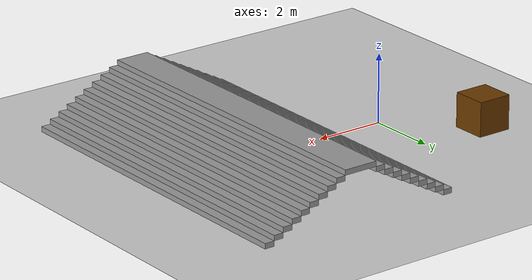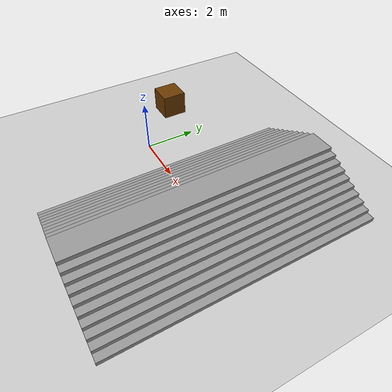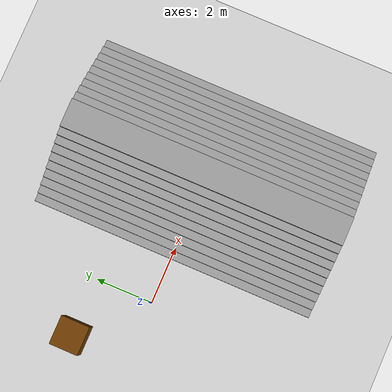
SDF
<?xml version="1.0" ?>
<sdf version="1.5">
    <world name="default">

        <physics type="ode">
        <max_step_size>0.0002</max_step_size>
        <real_time_factor>1</real_time_factor>
        <real_time_update_rate>5000</real_time_update_rate>
        <gravity>0 0 -9.81</gravity>
            <ode>
                <solver>
                <type>quick</type>
                <iters>50</iters>
                <sor>1.3</sor>
                </solver>
                <constraints>
                <cfm>0.0</cfm>
                <erp>0.2</erp>
                <contact_max_correcting_vel>10.0</contact_max_correcting_vel>
                <contact_surface_layer>0.001</contact_surface_layer>
                </constraints>
            </ode>
        </physics>

        <scene>
        <sky>
            <clouds>
                <speed>12</speed>
            </clouds>
        </sky>
        </scene>
        <include>
            <uri>model://sun</uri>
        </include>
        <include>
            <uri>model://ground_plane</uri>
        </include>
        <model name="static_environment">
        <static>true</static>
            <link name="static_box">
                <pose>-2 2 0.5 0 0 0</pose>
                <collision name="static_box_collision">
                    <geometry>
                        <box>
                            <size>1 1 1</size>
                        </box>
                    </geometry>
                </collision>
                <visual name="static_box_visual">
                    <geometry>
                        <box>
                            <size>1 1 1</size>
                        </box>
                    </geometry>
                    <material>
                        <ambient>0.2 0.2 0.2 1.0</ambient>
                        <diffuse>.421 0.225 0.0 1.0</diffuse>
                    </material>
                </visual>
            </link>

            <link name='Stairs'>
                <pose>3 0 0 0 0 0</pose>
                <scale>1 1 1</scale>
                <visual name='Stairs_Visual_0'>
                    <pose>-1.26 -0 0.075 0 -0 1.5708</pose>
                    <geometry>
                    <box>
                        <size>10 0.28 0.15</size>
                    </box>
                    </geometry>
                    <material>
                    <script>
                        <uri>file://media/materials/scripts/gazebo.material</uri>
                        <name>Gazebo/Grey</name>
                    </script>
                    <ambient>1 1 1 1</ambient>
                    </material>
                    <meta>
                    <layer>0</layer>
                    </meta>
                </visual>
                <collision name='Stairs_Collision_0'>
                    <geometry>
                    <box>
                        <size>10 0.28 0.15</size>
                    </box>
                    </geometry>
                    <pose>-1.26 -0 0.075 0 -0 1.5708</pose>
                </collision>
                <visual name='Stairs_Visual_1'>
                    <pose>-0.98 -0 0.225 0 -0 1.5708</pose>
                    <geometry>
                    <box>
                        <size>10 0.28 0.15</size>
                    </box>
                    </geometry>
                    <material>
                    <script>
                        <uri>file://media/materials/scripts/gazebo.material</uri>
                        <name>Gazebo/Grey</name>
                    </script>
                    <ambient>1 1 1 1</ambient>
                    </material>
                    <meta>
                    <layer>0</layer>
                    </meta>
                </visual>
                <collision name='Stairs_Collision_1'>
                    <geometry>
                    <box>
                        <size>10 0.28 0.15</size>
                    </box>
                    </geometry>
                    <pose>-0.98 -0 0.225 0 -0 1.5708</pose>
                </collision>
                <visual name='Stairs_Visual_2'>
                    <pose>-0.7 -0 0.375 0 -0 1.5708</pose>
                    <geometry>
                    <box>
                        <size>10 0.28 0.15</size>
                    </box>
                    </geometry>
                    <material>
                    <script>
                        <uri>file://media/materials/scripts/gazebo.material</uri>
                        <name>Gazebo/Grey</name>
                    </script>
                    <ambient>1 1 1 1</ambient>
                    </material>
                    <meta>
                    <layer>0</layer>
                    </meta>
                </visual>
                <collision name='Stairs_Collision_2'>
                    <geometry>
                    <box>
                        <size>10 0.28 0.15</size>
                    </box>
                    </geometry>
                    <pose>-0.7 -0 0.375 0 -0 1.5708</pose>
                </collision>
                <visual name='Stairs_Visual_3'>
                    <pose>-0.42 -0 0.525 0 -0 1.5708</pose>
                    <geometry>
                    <box>
                        <size>10 0.28 0.15</size>
                    </box>
                    </geometry>
                    <material>
                    <script>
                        <uri>file://media/materials/scripts/gazebo.material</uri>
                        <name>Gazebo/Grey</name>
                    </script>
                    <ambient>1 1 1 1</ambient>
                    </material>
                    <meta>
                    <layer>0</layer>
                    </meta>
                </visual>
                <collision name='Stairs_Collision_3'>
                    <geometry>
                    <box>
                        <size>10 0.28 0.15</size>
                    </box>
                    </geometry>
                    <pose>-0.42 -0 0.525 0 -0 1.5708</pose>
                </collision>
                <visual name='Stairs_Visual_4'>
                    <pose>-0.14 -0 0.675 0 -0 1.5708</pose>
                    <geometry>
                    <box>
                        <size>10 0.28 0.15</size>
                    </box>
                    </geometry>
                    <material>
                    <script>
                        <uri>file://media/materials/scripts/gazebo.material</uri>
                        <name>Gazebo/Grey</name>
                    </script>
                    <ambient>1 1 1 1</ambient>
                    </material>
                    <meta>
                    <layer>0</layer>
                    </meta>
                </visual>
                <collision name='Stairs_Collision_4'>
                    <geometry>
                    <box>
                        <size>10 0.28 0.15</size>
                    </box>
                    </geometry>
                    <pose>-0.14 -0 0.675 0 -0 1.5708</pose>
                </collision>
                <visual name='Stairs_Visual_5'>
                    <pose>0.14 0 0.825 0 -0 1.5708</pose>
                    <geometry>
                    <box>
                        <size>10 0.28 0.15</size>
                    </box>
                    </geometry>
                    <material>
                    <script>
                        <uri>file://media/materials/scripts/gazebo.material</uri>
                        <name>Gazebo/Grey</name>
                    </script>
                    <ambient>1 1 1 1</ambient>
                    </material>
                    <meta>
                    <layer>0</layer>
                    </meta>
                </visual>
                <collision name='Stairs_Collision_5'>
                    <geometry>
                    <box>
                        <size>10 0.28 0.15</size>
                    </box>
                    </geometry>
                    <pose>0.14 0 0.825 0 -0 1.5708</pose>
                </collision>
                <visual name='Stairs_Visual_6'>
                    <pose>0.42 0 0.975 0 -0 1.5708</pose>
                    <geometry>
                    <box>
                        <size>10 0.28 0.15</size>
                    </box>
                    </geometry>
                    <material>
                    <script>
                        <uri>file://media/materials/scripts/gazebo.material</uri>
                        <name>Gazebo/Grey</name>
                    </script>
                    <ambient>1 1 1 1</ambient>
                    </material>
                    <meta>
                    <layer>0</layer>
                    </meta>
                </visual>
                <collision name='Stairs_Collision_6'>
                    <geometry>
                    <box>
                        <size>10 0.28 0.15</size>
                    </box>
                    </geometry>
                    <pose>0.42 0 0.975 0 -0 1.5708</pose>
                </collision>
                <visual name='Stairs_Visual_7'>
                    <pose>0.7 0 1.125 0 -0 1.5708</pose>
                    <geometry>
                    <box>
                        <size>10 0.28 0.15</size>
                    </box>
                    </geometry>
                    <material>
                    <script>
                        <uri>file://media/materials/scripts/gazebo.material</uri>
                        <name>Gazebo/Grey</name>
                    </script>
                    <ambient>1 1 1 1</ambient>
                    </material>
                    <meta>
                    <layer>0</layer>
                    </meta>
                </visual>
                <collision name='Stairs_Collision_7'>
                    <geometry>
                    <box>
                        <size>10 0.28 0.15</size>
                    </box>
                    </geometry>
                    <pose>0.7 0 1.125 0 -0 1.5708</pose>
                </collision>
                <visual name='Stairs_Visual_8'>
                    <pose>0.98 0 1.275 0 -0 1.5708</pose>
                    <geometry>
                    <box>
                        <size>10 0.28 0.15</size>
                    </box>
                    </geometry>
                    <material>
                    <script>
                        <uri>file://media/materials/scripts/gazebo.material</uri>
                        <name>Gazebo/Grey</name>
                    </script>
                    <ambient>1 1 1 1</ambient>
                    </material>
                    <meta>
                    <layer>0</layer>
                    </meta>
                </visual>
                <collision name='Stairs_Collision_8'>
                    <geometry>
                    <box>
                        <size>10 0.28 0.15</size>
                    </box>
                    </geometry>
                    <pose>0.98 0 1.275 0 -0 1.5708</pose>
                </collision>

                <visual name='Stairs_Visual_9'>
                    <pose>1.62 0 1.425 0 -0 1.5708</pose>
                    <geometry>
                    <box>
                        <size>10 1.0 0.15</size>
                    </box>
                    </geometry>
                    <material>
                    <script>
                        <uri>file://media/materials/scripts/gazebo.material</uri>
                        <name>Gazebo/Grey</name>
                    </script>
                    <ambient>1 1 1 1</ambient>
                    </material>
                    <meta>
                    <layer>0</layer>
                    </meta>
                </visual>
                <collision name='Stairs_Collision_9'>
                    <geometry>
                    <box>
                        <size>10 1.0 0.15</size>
                    </box>
                    </geometry>
                    <pose>1.62 0 1.425 0 -0 1.5708</pose>
                </collision>

                <visual name='Stairs_Down_Visual_0'>
                    <pose>2.26 0 1.275 0 -0 1.5708</pose>
                    <geometry>
                    <box>
                        <size>10 0.28 0.15</size>
                    </box>
                    </geometry>
                    <material>
                    <script>
                        <uri>file://media/materials/scripts/gazebo.material</uri>
                        <name>Gazebo/Grey</name>
                    </script>
                    <ambient>1 1 1 1</ambient>
                    </material>
                    <meta>
                    <layer>0</layer>
                    </meta>
                </visual>
                <collision name='Stairs_Down_Collision_0'>
                    <geometry>
                    <box>
                        <size>10 0.28 0.15</size>
                    </box>
                    </geometry>
                    <pose>2.26 0 1.275 0 -0 1.5708</pose>
                </collision>
                <visual name='Stairs_Down_Visual_1'>
                    <pose>2.54 0 1.125 0 -0 1.5708</pose>
                    <geometry>
                    <box>
                        <size>10 0.28 0.15</size>
                    </box>
                    </geometry>
                    <material>
                    <script>
                        <uri>file://media/materials/scripts/gazebo.material</uri>
                        <name>Gazebo/Grey</name>
                    </script>
                    <ambient>1 1 1 1</ambient>
                    </material>
                    <meta>
                    <layer>0</layer>
                    </meta>
                </visual>
                <collision name='Stairs_Down_Collision_1'>
                    <geometry>
                    <box>
                        <size>10 0.28 0.15</size>
                    </box>
                    </geometry>
                    <pose>2.54 0 1.125 0 -0 1.5708</pose>
                </collision>
                <visual name='Stairs_Down_Visual_2'>
                    <pose>2.82 0 0.975 0 -0 1.5708</pose>
                    <geometry>
                    <box>
                        <size>10 0.28 0.15</size>
                    </box>
                    </geometry>
                    <material>
                    <script>
                        <uri>file://media/materials/scripts/gazebo.material</uri>
                        <name>Gazebo/Grey</name>
                    </script>
                    <ambient>1 1 1 1</ambient>
                    </material>
                    <meta>
                    <layer>0</layer>
                    </meta>
                </visual>
                <collision name='Stairs_Down_Collision_2'>
                    <geometry>
                    <box>
                        <size>10 0.28 0.15</size>
                    </box>
                    </geometry>
                    <pose>2.82 0 0.975 0 -0 1.5708</pose>
                </collision>
                <visual name='Stairs_Down_Visual_3'>
                    <pose>3.10 0 0.825 0 -0 1.5708</pose>
                    <geometry>
                    <box>
                        <size>10 0.28 0.15</size>
                    </box>
                    </geometry>
                    <material>
                    <script>
                        <uri>file://media/materials/scripts/gazebo.material</uri>
                        <name>Gazebo/Grey</name>
                    </script>
                    <ambient>1 1 1 1</ambient>
                    </material>
                    <meta>
                    <layer>0</layer>
                    </meta>
                </visual>
                <collision name='Stairs_Down_Collision_3'>
                    <geometry>
                    <box>
                        <size>10 0.28 0.15</size>
                    </box>
                    </geometry>
                    <pose>3.10 0 0.825 0 -0 1.5708</pose>
                </collision>
                <visual name='Stairs_Down_Visual_4'>
                    <pose>3.38 0 0.675 0 -0 1.5708</pose>
                    <geometry>
                    <box>
                        <size>10 0.28 0.15</size>
                    </box>
                    </geometry>
                    <material>
                    <script>
                        <uri>file://media/materials/scripts/gazebo.material</uri>
                        <name>Gazebo/Grey</name>
                    </script>
                    <ambient>1 1 1 1</ambient>
                    </material>
                    <meta>
                    <layer>0</layer>
                    </meta>
                </visual>
                <collision name='Stairs_Down_Collision_4'>
                    <geometry>
                    <box>
                        <size>10 0.28 0.15</size>
                    </box>
                    </geometry>
                    <pose>3.38 0 0.675 0 -0 1.5708</pose>
                </collision>
                <visual name='Stairs_Down_Visual_5'>
                    <pose>3.66 0 0.525 0 -0 1.5708</pose>
                    <geometry>
                    <box>
                        <size>10 0.28 0.15</size>
                    </box>
                    </geometry>
                    <material>
                    <script>
                        <uri>file://media/materials/scripts/gazebo.material</uri>
                        <name>Gazebo/Grey</name>
                    </script>
                    <ambient>1 1 1 1</ambient>
                    </material>
                    <meta>
                    <layer>0</layer>
                    </meta>
                </visual>
                <collision name='Stairs_Down_Collision_5'>
                    <geometry>
                    <box>
                        <size>10 0.28 0.15</size>
                    </box>
                    </geometry>
                    <pose>3.66 0 0.525 0 -0 1.5708</pose>
                </collision>
                <visual name='Stairs_Down_Visual_6'>
                    <pose>3.94 0 0.375 0 -0 1.5708</pose>
                    <geometry>
                    <box>
                        <size>10 0.28 0.15</size>
                    </box>
                    </geometry>
                    <material>
                    <script>
                        <uri>file://media/materials/scripts/gazebo.material</uri>
                        <name>Gazebo/Grey</name>
                    </script>
                    <ambient>1 1 1 1</ambient>
                    </material>
                    <meta>
                    <layer>0</layer>
                    </meta>
                </visual>
                <collision name='Stairs_Down_Collision_6'>
                    <geometry>
                    <box>
                        <size>10 0.28 0.15</size>
                    </box>
                    </geometry>
                    <pose>3.94 0 0.375 0 -0 1.5708</pose>
                </collision>
                <visual name='Stairs_Down_Visual_7'>
                    <pose>4.22 0 0.225 0 -0 1.5708</pose>
                    <geometry>
                    <box>
                        <size>10 0.28 0.15</size>
                    </box>
                    </geometry>
                    <material>
                    <script>
                        <uri>file://media/materials/scripts/gazebo.material</uri>
                        <name>Gazebo/Grey</name>
                    </script>
                    <ambient>1 1 1 1</ambient>
                    </material>
                    <meta>
                    <layer>0</layer>
                    </meta>
                </visual>
                <collision name='Stairs_Down_Collision_7'>
                    <geometry>
                    <box>
                        <size>10 0.28 0.15</size>
                    </box>
                    </geometry>
                    <pose>4.22 0 0.225 0 -0 1.5708</pose>
                </collision>
                <visual name='Stairs_Down_Visual_8'>
                    <pose>4.50 0 0.075 0 -0 1.5708</pose>
                    <geometry>
                    <box>
                        <size>10 0.28 0.15</size>
                    </box>
                    </geometry>
                    <material>
                    <script>
                        <uri>file://media/materials/scripts/gazebo.material</uri>
                        <name>Gazebo/Grey</name>
                    </script>
                    <ambient>1 1 1 1</ambient>
                    </material>
                    <meta>
                    <layer>0</layer>
                    </meta>
                </visual>
                <collision name='Stairs_Down_Collision_8'>
                    <geometry>
                    <box>
                        <size>10 0.28 0.15</size>
                    </box>
                    </geometry>
                    <pose>4.50 0 0.075 0 -0 1.5708</pose>
                </collision>
            </link>
        </model>
    </world>
</sdf>
